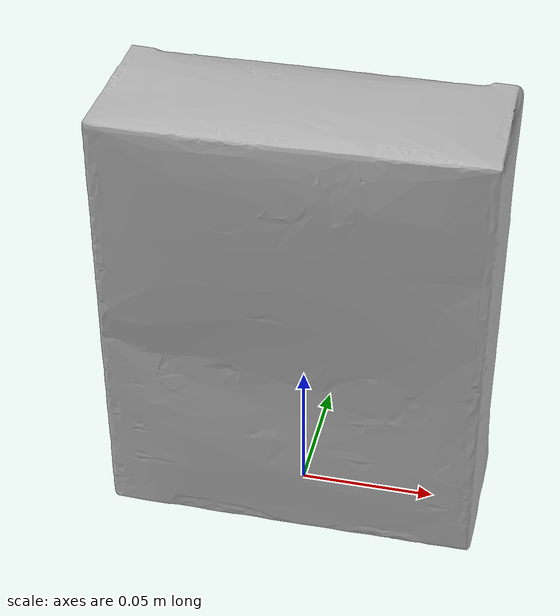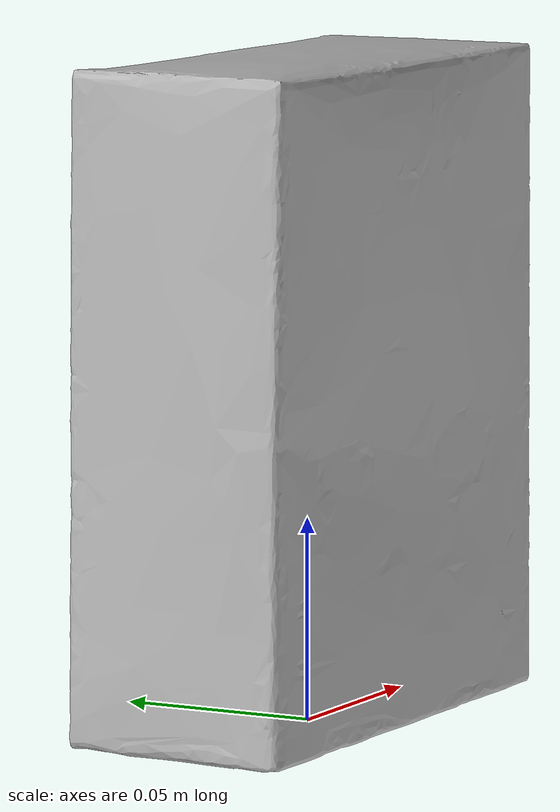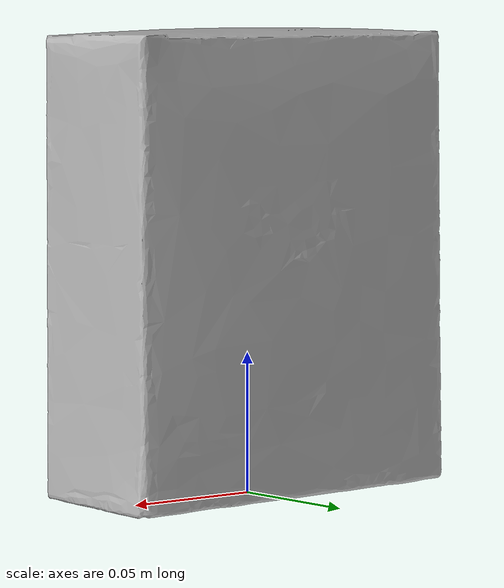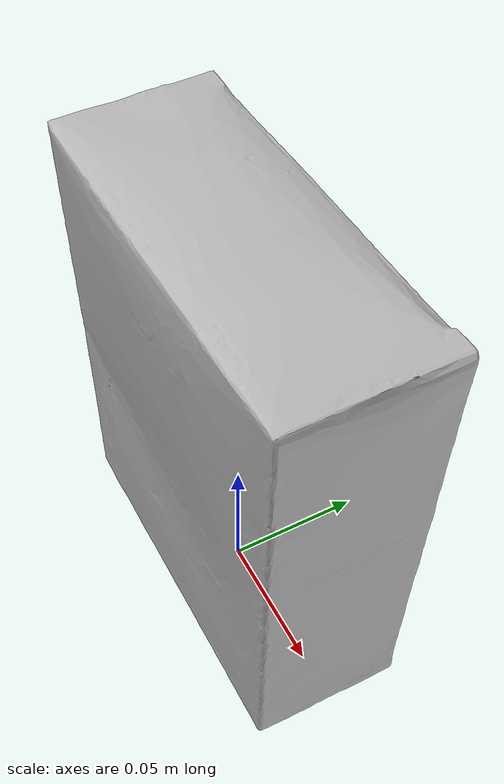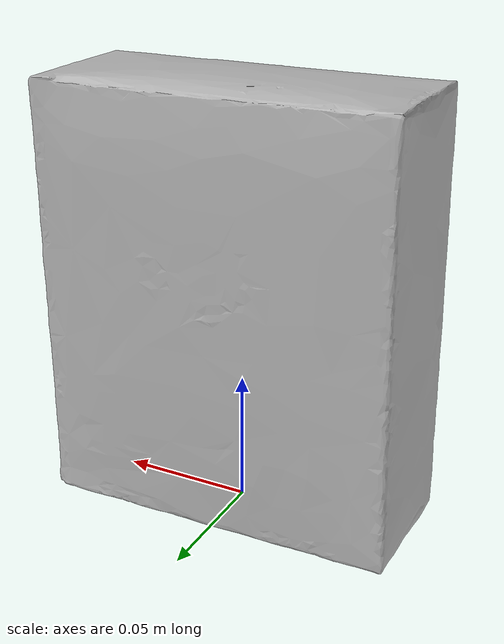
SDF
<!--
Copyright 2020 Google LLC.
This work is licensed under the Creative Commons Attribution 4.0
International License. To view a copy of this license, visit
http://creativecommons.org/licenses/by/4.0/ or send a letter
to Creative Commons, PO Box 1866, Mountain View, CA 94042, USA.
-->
<?xml version="1.0" ?>
<sdf version="1.6">
  <model name="Nestle_Skinny_Cow_Dreamy_Clusters_Candy_Dark_Chocolate_6_pack_1_oz_pouches">
    <link name="link_0">
      <visual name="visual">
        <geometry>
          <mesh>
            <uri>model://Nestle_Skinny_Cow_Dreamy_Clusters_Candy_Dark_Chocolate_6_pack_1_oz_pouches/meshes/model.obj</uri>
          </mesh>
        </geometry>
      </visual>
      <collision name="collision_0">
        <geometry>
          <mesh>
            <uri>model://Nestle_Skinny_Cow_Dreamy_Clusters_Candy_Dark_Chocolate_6_pack_1_oz_pouches/meshes/model.obj</uri>
          </mesh>
        </geometry>
      </collision>
    </link>
  </model>
</sdf>
